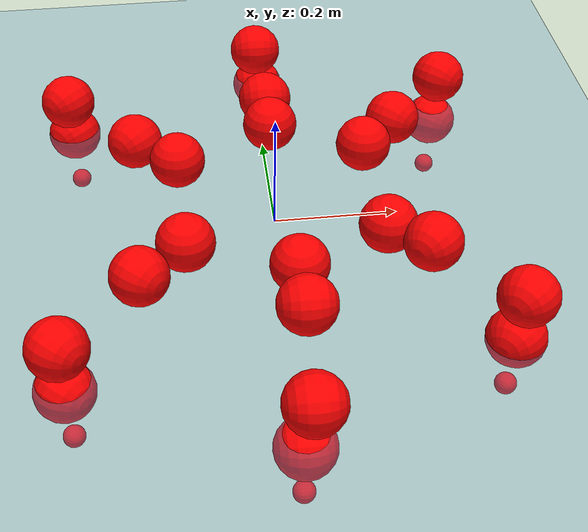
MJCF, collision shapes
<mujoco model="Golem">
  <compiler angle="radian" assetdir="assets" balanceinertia="true" inertiafromgeom="false"/>

  <option timestep="0.005" density="1.2" viscosity="2e-05"/>

  <size nkey="1"/>

  <visual>
    <quality shadowsize="8192"/>
    <map shadowclip="0.5"/>
  </visual>

  <default>
    <default class="/">
      <joint armature="0.01" damping="0.01" frictionloss="0.01"/>
      <geom contype="0" conaffinity="0" group="1" solref="-1000 -80"/>
      <site size="0.01 0.005 0.005" group="5"/>
      <general forcelimited="true" biastype="affine" gainprm="25" biasprm="0 -25 -0.5"/>
      <default class="visual">
        <geom type="mesh" group="2"/>
      </default>
      <default class="collision">
        <geom group="3"/>
      </default>
      <default class="foot">
        <geom size="0.01 0 0" condim="6" group="4" priority="1" solimp="0.015 1 0.01"/>
      </default>
      <default class="reward_collision_sphere">
        <geom group="5" rgba="1 0 0 1"/>
      </default>
    </default>
  </default>

  <asset>
    <texture type="skybox" colorspace="auto" name="//unnamed_texture_0" builtin="gradient" rgb1="0.95 0.95 0.95" rgb2="0.95 0.95 0.95" width="100" height="600"/>
    <texture type="2d" colorspace="auto" name="texplane" builtin="checker" rgb1="0.345 0.575 0.748" rgb2="0.345 0.575 0.748" markrgb="1 1 1" width="512" height="512"/>
    <material name="MatPlane" class="/" texture="texplane" texuniform="true" texrepeat="2 2" specular="0.9"/>
    <mesh name="body" class="/" file="body.stl" scale="0.001 0.001 0.001"/>
    <mesh name="coxa" class="/" file="coxa.stl" scale="0.001 0.001 0.001"/>
    <mesh name="femur" class="/" file="femur.stl" scale="0.001 0.001 0.001"/>
    <mesh name="tibia" class="/" file="tibia.stl" scale="0.001 0.001 0.001"/>
    <mesh name="tarsus" class="/" file="tarsus.stl" scale="0.001 0.001 0.001"/>
  </asset>

  <worldbody>
    <geom name="floor" class="/" size="100 100 0.125" type="plane" group="0" material="MatPlane"/>
    <light name="toplight_shadow" class="/" pos="0 0 5" dir="0.0990148 0.0990148 -0.990148" type="directional" ambient="0.04 0.04 0.04" diffuse="0.55 0.55 0.55" specular="0.12 0.12 0.12"/>
    <light name="toplight_fill" class="/" pos="0 0 5" dir="0.0990148 0.0990148 -0.990148" type="directional" castshadow="false" ambient="0.04 0.04 0.04" diffuse="0.3 0.3 0.3" specular="0.08 0.08 0.08"/>
    <body name="trunk" pos="0.00701974 0.000786818 0.0051207" quat="1 -9.94461e-05 0.00021705 -0.000137">
      <inertial pos="0.000541305 0.00224996 0.0104144" quat="0.998551 -0.0472314 0.0257233 0.00187987" mass="5.73137" diaginertia="0.0102188 0.0764966 0.00757017"/>
      <joint name="//unnamed_joint_0" type="free"/>
      <geom name="//unnamed_geom_1" class="/" pos="0 0 0.0599896" quat="1 0 0 0" type="mesh" rgba="0.9 0.9 0.9 1" mesh="body"/>
      <site name="imu" class="/" pos="0.10598 0.0145239 0.117267" size="0.0114174"/>
      <camera name="track" class="/" pos="0 -2.99733 0" quat="0.707107 0.707107 0 0" mode="trackcom"/>
      <camera name="ego_camera" class="/" pos="0.128598 0 0.0937338" quat="-0.5 -0.5 0.5 0.5"/>
      <body name="coxa_RR" pos="-0.175529 -0.13258 0.0670602" quat="0.383307 -0.00024679 0.000643479 -0.923621">
        <inertial pos="0.00309657 0.0010044 0.00422128" quat="0.999474 0.0166564 -0.0261102 0.00960381" mass="0.329659" diaginertia="0.00917376 0.0816361 0.00797763"/>
        <joint name="coxa_joint_RR" class="/" pos="0 0 0" axis="0.0240476 0.0150729 -0.999597" range="-3.05491 2.92511" armature="0.0141427" damping="0.0114006" frictionloss="0.0146693"/>
        <geom name="//unnamed_geom_2" class="/" type="mesh" rgba="0.2 0.2 0.2 1" mesh="coxa"/>
        <geom name="//unnamed_geom_3" class="reward_collision_sphere" size="0.0456696" pos="-0.0296765 0 0"/>
        <body name="femur_RR" pos="0.058036 -0.0124906 -0.0100849" quat="0.500028 -0.500059 0.499974 0.499939">
          <inertial pos="0.00358982 -0.0105065 -0.0120307" quat="0.999986 0.00231687 0.000156578 0.00480958" mass="0.297479" diaginertia="0.00871017 0.0740921 0.00639842"/>
          <joint name="femur_joint_RR" class="/" pos="0 0 0" axis="-0.00954806 0.00528494 -0.99994" stiffness="0.00934414" range="-3.15456 3.13575" armature="0.00983439" damping="0" frictionloss="0.00444114"/>
          <geom name="//unnamed_geom_4" class="/" type="mesh" rgba="0.9 0.9 0.9 1" mesh="femur"/>
          <geom name="//unnamed_geom_5" class="reward_collision_sphere" size="0.0456696"/>
          <body name="tibia_RR" pos="-0.00438777 -0.172453 0.0119595" quat="-0.000108862 1 2.61595e-05 -0.000491604">
            <inertial pos="-0.00545663 0.0110081 -0.00223088" quat="0.999997 0.00136411 -0.00173252 0.00105064" mass="0.286018" diaginertia="0.00973931 0.0782638 0.00734955"/>
            <joint name="tibia_joint_RR" class="/" pos="0 0 0" axis="0.0107149 -0.00664879 0.99992" range="-3.13572 3.13379" armature="0.0118474" damping="0" frictionloss="0.0150735"/>
            <geom name="//unnamed_geom_6" class="/" type="mesh" rgba="0.2 0.2 0.2 1" mesh="tibia"/>
            <geom name="//unnamed_geom_7" class="reward_collision_sphere" size="0.0456696"/>
            <body name="tarsus_RR" pos="0.0904177 0.00130113 0.000386181" quat="1 -0.00020848 2.43226e-05 -0.00013052">
              <inertial pos="0.0657244 0.0012753 -4.5251e-05" quat="0.49304 0.480362 0.510598 0.515222" mass="0.272268" diaginertia="0.0083596 0.0784348 0.00726921"/>
              <joint name="tarsus_joint_RR" class="/" pos="0 0 0" axis="0.00997386 -0.0070308 0.999926" stiffness="0.000762182" range="-2.90095 2.8901" armature="0.0120164" damping="0" frictionloss="0.0122897"/>
              <geom name="//unnamed_geom_8" class="/" type="mesh" rgba="0.9 0.9 0.9 1" mesh="tarsus"/>
              <geom name="foot_1" class="foot" size="0.00860525" pos="0.110792 0 0" quat="0 -0.707107 0 0.707107"/>
              <geom name="//unnamed_geom_10" class="reward_collision_sphere" size="0.0456696"/>
              <geom name="//unnamed_geom_11" class="reward_collision_sphere" size="0.0171261" pos="0.106341 0 0"/>
              <site name="foot_1" class="foot" pos="0.110792 0 0" quat="0 -0.707107 0 0.707107" size="0.0114174"/>
            </body>
          </body>
        </body>
      </body>
      <body name="coxa_RM" pos="0.0107635 -0.198985 0.0603469" quat="0.708672 -0.000208054 0.000228744 -0.705538">
        <inertial pos="0.00117645 0.00597553 0.00225912" quat="0.998338 -0.0353479 0.0446026 -0.00902859" mass="0.263786" diaginertia="0.00821268 0.0746211 0.00631218"/>
        <joint name="coxa_joint_RM" class="/" pos="0 0 0" axis="0.00350089 -0.010905 -0.999934" range="-3.11662 3.12802" armature="0.012176" damping="0.0062055" frictionloss="0.0113651"/>
        <geom name="//unnamed_geom_12" class="/" type="mesh" rgba="0.2 0.2 0.2 1" mesh="coxa"/>
        <geom name="//unnamed_geom_13" class="reward_collision_sphere" size="0.0456696" pos="-0.0296765 0 0"/>
        <body name="femur_RM" pos="0.0568769 -0.00139508 0.00508184" quat="0.501786 -0.49734 0.503273 0.497574">
          <inertial pos="0.010879 0.00562995 0.012287" quat="0.999999 -0.000514964 0.000907248 -0.00128683" mass="0.261582" diaginertia="0.00940214 0.0753796 0.00678325"/>
          <joint name="femur_joint_RM" class="/" pos="0 0 0" axis="0.0111519 -0.0238525 -0.999653" range="-3.17567 2.92793" armature="0.00966109" damping="0.0122269" frictionloss="0.0170982"/>
          <geom name="//unnamed_geom_14" class="/" type="mesh" rgba="0.9 0.9 0.9 1" mesh="femur"/>
          <geom name="//unnamed_geom_15" class="reward_collision_sphere" size="0.0456696"/>
          <body name="tibia_RM" pos="0.00798499 -0.167771 -0.0119546" quat="-0.000632924 0.999997 -0.00146843 0.0018409">
            <inertial pos="-0.00068811 -0.00213812 -0.0004099" quat="0.999998 -0.000602854 0.0010814 0.00177751" mass="0.287442" diaginertia="0.0082465 0.0669975 0.0069203"/>
            <joint name="tibia_joint_RM" class="/" pos="0 0 0" axis="-0.0350156 0.0403698 0.998571" stiffness="0.0092659" range="-3.20931 3.32815" armature="0.0114436" damping="0.0333629" frictionloss="0.00893378"/>
            <geom name="//unnamed_geom_16" class="/" type="mesh" rgba="0.2 0.2 0.2 1" mesh="tibia"/>
            <geom name="//unnamed_geom_17" class="reward_collision_sphere" size="0.0456696"/>
            <body name="tarsus_RM" pos="0.0947542 -0.000857476 0.0104763" quat="1 -1.62577e-06 -7.25814e-05 3.50389e-06">
              <inertial pos="0.0612256 0.00214124 -0.00704625" quat="0.489269 0.492228 0.483297 0.533621" mass="0.28734" diaginertia="0.00839807 0.0723372 0.00799435"/>
              <joint name="tarsus_joint_RM" class="/" pos="0 0 0" axis="0.000399734 -0.0157144 0.999876" stiffness="0.023135" range="-2.94695 3.3639" armature="0.0111234" damping="0" frictionloss="0.0124273"/>
              <geom name="//unnamed_geom_18" class="/" type="mesh" rgba="0.9 0.9 0.9 1" mesh="tarsus"/>
              <geom name="foot_2" class="foot" size="0.0102594" pos="0.110792 0 0" quat="0 -0.707107 0 0.707107"/>
              <geom name="//unnamed_geom_20" class="reward_collision_sphere" size="0.0456696"/>
              <geom name="//unnamed_geom_21" class="reward_collision_sphere" size="0.0171261" pos="0.106341 0 0"/>
              <site name="foot_2" class="foot" pos="0.110792 0 0" quat="0 -0.707107 0 0.707107" size="0.0114174"/>
            </body>
          </body>
        </body>
      </body>
      <body name="coxa_RF" pos="0.175415 -0.128844 0.0694794" quat="0.922861 0.000496099 0.00104104 -0.385131">
        <inertial pos="-0.00322865 0.013045 -0.00113717" quat="0.999931 0.0104024 0.00418275 0.00337395" mass="0.283291" diaginertia="0.00910056 0.0693151 0.0066204"/>
        <joint name="coxa_joint_RF" class="/" pos="0 0 0" axis="0.0145442 0.00295227 -0.99989" stiffness="0.0105121" range="-3.14255 2.99304" armature="0.0111438" damping="0.046336" frictionloss="0.0105227"/>
        <geom name="//unnamed_geom_22" class="/" type="mesh" rgba="0.2 0.2 0.2 1" mesh="coxa"/>
        <geom name="//unnamed_geom_23" class="reward_collision_sphere" size="0.0456696" pos="-0.0296765 0 0"/>
        <body name="femur_RF" pos="0.0475671 0.00457566 0.00565685" quat="0.499888 -0.49998 0.499467 0.500664">
          <inertial pos="-9.53987e-05 -0.00018001 -0.00845893" quat="0.999945 -0.00164871 0.00607875 0.00841159" mass="0.304614" diaginertia="0.00932554 0.0811169 0.00663369"/>
          <joint name="femur_joint_RF" class="/" pos="0 0 0" axis="0.00413454 0.00546249 -0.999977" range="-3.35196 3.1115" armature="0.0124406" damping="0.01795" frictionloss="0.0158478"/>
          <geom name="//unnamed_geom_24" class="/" type="mesh" rgba="0.9 0.9 0.9 1" mesh="femur"/>
          <geom name="//unnamed_geom_25" class="reward_collision_sphere" size="0.0456696"/>
          <body name="tibia_RF" pos="0.00701491 -0.162265 -0.0045335" quat="0.000381568 1 -0.000233201 -0.000874103">
            <inertial pos="-0.00708361 0.00493328 -0.000136243" quat="0.998333 -0.0421744 -0.0276194 -0.028095" mass="0.274989" diaginertia="0.00977094 0.0817648 0.00709031"/>
            <joint name="tibia_joint_RF" class="/" pos="0 0 0" axis="0.0351288 -0.0204462 0.999174" stiffness="0.00343733" range="-3.14269 3.13481" armature="0.0108855" damping="0" frictionloss="0.0109608"/>
            <geom name="//unnamed_geom_26" class="/" type="mesh" rgba="0.2 0.2 0.2 1" mesh="tibia"/>
            <geom name="//unnamed_geom_27" class="reward_collision_sphere" size="0.0456696"/>
            <body name="tarsus_RF" pos="0.0748908 0.000382021 0.0131109" quat="0.999996 0.00095056 0.000756927 0.00251602">
              <inertial pos="0.0553598 0.00933303 -0.0025437" quat="0.497458 0.501732 0.509651 0.490975" mass="0.346354" diaginertia="0.0098133 0.0854565 0.00690695"/>
              <joint name="tarsus_joint_RF" class="/" pos="0 0 0" axis="-0.0326524 0.0296195 0.999028" stiffness="0.0035799" range="-2.97974 3.13677" armature="0.011195" damping="0" frictionloss="0.0127716"/>
              <geom name="//unnamed_geom_28" class="/" type="mesh" rgba="0.9 0.9 0.9 1" mesh="tarsus"/>
              <geom name="foot_3" class="foot" size="0.0111117" pos="0.110792 0 0" quat="0 -0.707107 0 0.707107"/>
              <geom name="//unnamed_geom_30" class="reward_collision_sphere" size="0.0456696"/>
              <geom name="//unnamed_geom_31" class="reward_collision_sphere" size="0.0171261" pos="0.106341 0 0"/>
              <site name="foot_3" class="foot" pos="0.110792 0 0" quat="0 -0.707107 0 0.707107" size="0.0114174"/>
            </body>
          </body>
        </body>
      </body>
      <body name="coxa_LR" pos="-0.178842 0.123691 0.0527549" quat="0.384219 -0.000497607 -0.00148394 0.923241">
        <inertial pos="0.000951121 0.00130802 -0.00933575" quat="0.999996 0.00105867 -0.00261313 -0.000590955" mass="0.293986" diaginertia="0.00923934 0.0719299 0.00792341"/>
        <joint name="coxa_joint_LR" class="/" pos="0 0 0" axis="0.00038593 0.000363486 -1" stiffness="0.0399635" range="-3.04618 3.08237" armature="0.0136908" damping="0.0340225" frictionloss="0.0176823"/>
        <geom name="//unnamed_geom_32" class="/" type="mesh" rgba="0.2 0.2 0.2 1" mesh="coxa"/>
        <geom name="//unnamed_geom_33" class="reward_collision_sphere" size="0.0456696" pos="-0.0296765 0 0"/>
        <body name="femur_LR" pos="0.0610844 0.00703381 -0.000790196" quat="0.500404 -0.500086 0.500137 0.499372">
          <inertial pos="-0.0100179 0.00408895 -0.00765753" quat="0.999875 0.00345065 0.0153976 -0.000646399" mass="0.33772" diaginertia="0.00916669 0.0750276 0.00706478"/>
          <joint name="femur_joint_LR" class="/" pos="0 0 0" axis="-0.0156016 0.000462083 0.999878" range="-2.89939 3.34989" armature="0.017609" damping="0.0142732" frictionloss="0.0123351"/>
          <geom name="//unnamed_geom_34" class="/" type="mesh" rgba="0.9 0.9 0.9 1" mesh="femur"/>
          <geom name="//unnamed_geom_35" class="reward_collision_sphere" size="0.0456696"/>
          <body name="tibia_LR" pos="-0.00517254 -0.164959 -0.00198826" quat="-0.0018695 0.999997 -0.00140314 0.001093">
            <inertial pos="-0.00534397 0.00801158 -0.00149344" quat="0.999981 0.00212101 0.00465659 0.00342737" mass="0.26151" diaginertia="0.00911426 0.0656928 0.00767131"/>
            <joint name="tibia_joint_LR" class="/" pos="0 0 0" axis="0.0159132 -0.0453718 -0.998843" stiffness="0.0265956" range="-3.13905 3.32248" armature="0.0132641" damping="0" frictionloss="0.0123286"/>
            <geom name="//unnamed_geom_36" class="/" type="mesh" rgba="0.2 0.2 0.2 1" mesh="tibia"/>
            <geom name="//unnamed_geom_37" class="reward_collision_sphere" size="0.0456696"/>
            <body name="tarsus_LR" pos="0.0752853 0.00320804 0.0066919" quat="0.999986 -0.00106996 -0.000380893 0.00521288">
              <inertial pos="0.0684799 0.00863302 0.00234462" quat="0.499709 0.500239 0.499584 0.500467" mass="0.299903" diaginertia="0.00939516 0.0846915 0.00668352"/>
              <joint name="tarsus_joint_LR" class="/" pos="0 0 0" axis="0.000178524 -0.000869858 -1" stiffness="0.0311682" range="-3.16745 3.16538" armature="0.00913887" damping="0.00939249" frictionloss="0.00575596"/>
              <geom name="//unnamed_geom_38" class="/" type="mesh" rgba="0.9 0.9 0.9 1" mesh="tarsus"/>
              <geom name="foot_4" class="foot" size="0.0117291" pos="0.110792 0 0" quat="0.707107 0 -0.707107 0"/>
              <geom name="//unnamed_geom_40" class="reward_collision_sphere" size="0.0456696"/>
              <geom name="//unnamed_geom_41" class="reward_collision_sphere" size="0.0171261" pos="0.106341 0 0"/>
              <site name="foot_4" class="foot" pos="0.110792 0 0" quat="0.707107 0 -0.707107 0" size="0.0114174"/>
            </body>
          </body>
        </body>
      </body>
      <body name="coxa_LM" pos="0.0035069 0.201502 0.0621741" quat="0.707387 0.000260528 -0.00134382 0.706825">
        <inertial pos="-0.00965186 0.000593072 -0.00291764" quat="0.999876 0.00705643 -0.00365392 -0.0135876" mass="0.332793" diaginertia="0.00893913 0.084867 0.00828673"/>
        <joint name="coxa_joint_LM" class="/" pos="0 0 0" axis="0.0132661 0.00356131 -0.999906" range="-3.13648 3.132" armature="0.0120321" damping="0.0327371" frictionloss="0.0149216"/>
        <geom name="//unnamed_geom_42" class="/" type="mesh" rgba="0.2 0.2 0.2 1" mesh="coxa"/>
        <geom name="//unnamed_geom_43" class="reward_collision_sphere" size="0.0456696" pos="-0.0296765 0 0"/>
        <body name="femur_LM" pos="0.0574021 -0.000622319 -0.00848815" quat="0.499987 -0.500149 0.499864 0.500001">
          <inertial pos="-0.00643121 0.000779061 0.00532513" quat="0.99991 -0.00862616 -0.00732358 0.00724501" mass="0.281744" diaginertia="0.00999505 0.0682157 0.0058143"/>
          <joint name="femur_joint_LM" class="/" pos="0 0 0" axis="0.0133983 0.0544104 0.998429" stiffness="0.0137481" range="-3.35564 3.22923" armature="0.0118424" damping="0.0702644" frictionloss="0.0114219"/>
          <geom name="//unnamed_geom_44" class="/" type="mesh" rgba="0.9 0.9 0.9 1" mesh="femur"/>
          <geom name="//unnamed_geom_45" class="reward_collision_sphere" size="0.0456696"/>
          <body name="tibia_LM" pos="0.00575276 -0.164195 0.00104783" quat="-0.00116149 0.999999 0.000206341 0.000527455">
            <inertial pos="0.0108795 -8.81377e-05 0.000119929" quat="0.999908 -0.00715619 0.00883036 0.00744585" mass="0.29784" diaginertia="0.00946052 0.077838 0.00679858"/>
            <joint name="tibia_joint_LM" class="/" pos="0 0 0" axis="0.00143473 0.00192095 -0.999997" range="-3.18363 3.22858" armature="0.0155996" damping="0" frictionloss="0.0187516"/>
            <geom name="//unnamed_geom_46" class="/" type="mesh" rgba="0.2 0.2 0.2 1" mesh="tibia"/>
            <geom name="//unnamed_geom_47" class="reward_collision_sphere" size="0.0456696"/>
            <body name="tarsus_LM" pos="0.0762067 -0.00146365 0.00298638" quat="0.999999 0.000855866 0.000820102 0.000735199">
              <inertial pos="0.0678657 -0.000386672 0.00642933" quat="0.528321 0.482988 0.514885 0.471691" mass="0.293165" diaginertia="0.00992913 0.0755159 0.00754784"/>
              <joint name="tarsus_joint_LM" class="/" pos="0 0 0" axis="-0.00157795 -0.00310104 -0.999994" range="-3.29946 3.1363" armature="0.0097923" damping="0" frictionloss="0.0117507"/>
              <geom name="//unnamed_geom_48" class="/" type="mesh" rgba="0.9 0.9 0.9 1" mesh="tarsus"/>
              <geom name="foot_5" class="foot" size="0.00588178" pos="0.110792 0 0" quat="0.707107 0 -0.707107 0"/>
              <geom name="//unnamed_geom_50" class="reward_collision_sphere" size="0.0456696"/>
              <geom name="//unnamed_geom_51" class="reward_collision_sphere" size="0.0171261" pos="0.106341 0 0"/>
              <site name="foot_5" class="foot" pos="0.110792 0 0" quat="0.707107 0 -0.707107 0" size="0.0114174"/>
            </body>
          </body>
        </body>
      </body>
      <body name="coxa_LF" pos="0.174065 0.123383 0.0605297" quat="0.923298 -0.000614366 0.000714559 0.384083">
        <inertial pos="-0.000197214 0.0119005 0.00264288" quat="0.998775 0.0112268 0.0478597 -0.00562675" mass="0.24444" diaginertia="0.00786108 0.0648763 0.00617882"/>
        <joint name="coxa_joint_LF" class="/" pos="0 0 0" axis="0.00879715 -0.0285741 -0.999553" stiffness="0.0390056" range="-3.29361 3.15059" armature="0.00854109" damping="0" frictionloss="0.0165174"/>
        <geom name="//unnamed_geom_52" class="/" type="mesh" rgba="0.2 0.2 0.2 1" mesh="coxa"/>
        <geom name="//unnamed_geom_53" class="reward_collision_sphere" size="0.0456696" pos="-0.0296765 0 0"/>
        <body name="femur_LF" pos="0.0687047 0.00701067 -0.00649763" quat="0.499402 -0.500203 0.500258 0.500137">
          <inertial pos="0.00258504 -0.00666741 0.00967384" quat="0.999967 0.00093877 -0.00323607 0.00736883" mass="0.278374" diaginertia="0.00843573 0.0690334 0.00737486"/>
          <joint name="femur_joint_LF" class="/" pos="0 0 0" axis="0.00225039 0.0095572 0.999952" stiffness="0.0614748" range="-3.11435 3.13949" armature="0.00755199" damping="0.0125848" frictionloss="0.0123092"/>
          <geom name="//unnamed_geom_54" class="/" type="mesh" rgba="0.9 0.9 0.9 1" mesh="femur"/>
          <geom name="//unnamed_geom_55" class="reward_collision_sphere" size="0.0456696"/>
          <body name="tibia_LF" pos="-0.000286268 -0.155532 0.00277869" quat="0.000433846 1 -6.59526e-05 0.000423274">
            <inertial pos="-0.0107265 -0.0107936 -0.0123877" quat="0.999895 -0.00916519 0.0108192 0.00302105" mass="0.3028" diaginertia="0.00976501 0.0707668 0.00624557"/>
            <joint name="tibia_joint_LF" class="/" pos="0 0 0" axis="0.0198877 0.000540305 -0.999802" range="-3.28113 3.35398" armature="0.0120624" damping="0.014702" frictionloss="0.0151441"/>
            <geom name="//unnamed_geom_56" class="/" type="mesh" rgba="0.2 0.2 0.2 1" mesh="tibia"/>
            <geom name="//unnamed_geom_57" class="reward_collision_sphere" size="0.0456696"/>
            <body name="tarsus_LF" pos="0.0932704 -0.00659826 -0.00284866" quat="1 0.000491712 0.000497769 0.000254438">
              <inertial pos="0.0663276 0.00221784 -0.010714" quat="0.516502 0.485178 0.525323 0.471024" mass="0.298203" diaginertia="0.00844743 0.0782319 0.00623599"/>
              <joint name="tarsus_joint_LF" class="/" pos="0 0 0" axis="-0.00102836 0.00164898 -0.999998" range="-2.95671 3.36147" armature="0.00797259" damping="0.00170911" frictionloss="0.00820299"/>
              <geom name="//unnamed_geom_58" class="/" type="mesh" rgba="0.9 0.9 0.9 1" mesh="tarsus"/>
              <geom name="foot_6" class="foot" size="0.00854312" pos="0.110792 0 0" quat="0.707107 0 -0.707107 0"/>
              <geom name="//unnamed_geom_60" class="reward_collision_sphere" size="0.0456696"/>
              <geom name="//unnamed_geom_61" class="reward_collision_sphere" size="0.0171261" pos="0.106341 0 0"/>
              <site name="foot_6" class="foot" pos="0.110792 0 0" quat="0.707107 0 -0.707107 0" size="0.0114174"/>
            </body>
          </body>
        </body>
      </body>
    </body>
  </worldbody>

  <contact>
    <pair class="/" geom1="floor" geom2="foot_1" name="//unnamed_contact_0"/>
    <pair class="/" geom1="floor" geom2="foot_2" name="//unnamed_contact_1"/>
    <pair class="/" geom1="floor" geom2="foot_3" name="//unnamed_contact_2"/>
    <pair class="/" geom1="floor" geom2="foot_4" name="//unnamed_contact_3"/>
    <pair class="/" geom1="floor" geom2="foot_5" name="//unnamed_contact_4"/>
    <pair class="/" geom1="floor" geom2="foot_6" name="//unnamed_contact_5"/>
  </contact>

  <actuator>
    <general name="coxa_joint_RR" class="/" joint="coxa_joint_RR" forcerange="-8.77405 8.77405" gainprm="19.8105" biasprm="0 -19.8105 -0.568216"/>
    <general name="femur_joint_RR" class="/" joint="femur_joint_RR" forcerange="-8.84179 8.84179" gainprm="19.8105" biasprm="0 -19.8105 -0.568216"/>
    <general name="tibia_joint_RR" class="/" joint="tibia_joint_RR" forcerange="-8.24958 8.24958" gainprm="19.8105" biasprm="0 -19.8105 -0.568216"/>
    <general name="tarsus_joint_RR" class="/" joint="tarsus_joint_RR" forcerange="-8.55951 8.55951" gainprm="19.8105" biasprm="0 -19.8105 -0.568216"/>
    <general name="coxa_joint_RM" class="/" joint="coxa_joint_RM" forcerange="-8.07903 8.07903" gainprm="19.8105" biasprm="0 -19.8105 -0.568216"/>
    <general name="femur_joint_RM" class="/" joint="femur_joint_RM" forcerange="-8.8417 8.8417" gainprm="19.8105" biasprm="0 -19.8105 -0.568216"/>
    <general name="tibia_joint_RM" class="/" joint="tibia_joint_RM" forcerange="-8.16515 8.16515" gainprm="19.8105" biasprm="0 -19.8105 -0.568216"/>
    <general name="tarsus_joint_RM" class="/" joint="tarsus_joint_RM" forcerange="-10.8233 10.8233" gainprm="19.8105" biasprm="0 -19.8105 -0.568216"/>
    <general name="coxa_joint_RF" class="/" joint="coxa_joint_RF" forcerange="-8.05718 8.05718" gainprm="19.8105" biasprm="0 -19.8105 -0.568216"/>
    <general name="femur_joint_RF" class="/" joint="femur_joint_RF" forcerange="-8.49205 8.49205" gainprm="19.8105" biasprm="0 -19.8105 -0.568216"/>
    <general name="tibia_joint_RF" class="/" joint="tibia_joint_RF" forcerange="-8.35389 8.35389" gainprm="19.8105" biasprm="0 -19.8105 -0.568216"/>
    <general name="tarsus_joint_RF" class="/" joint="tarsus_joint_RF" forcerange="-8.87729 8.87729" gainprm="19.8105" biasprm="0 -19.8105 -0.568216"/>
    <general name="coxa_joint_LR" class="/" joint="coxa_joint_LR" forcerange="-9.29096 9.29096" gainprm="19.8105" biasprm="0 -19.8105 -0.568216"/>
    <general name="femur_joint_LR" class="/" joint="femur_joint_LR" forcerange="-11.2413 11.2413" gainprm="19.8105" biasprm="0 -19.8105 -0.568216"/>
    <general name="tibia_joint_LR" class="/" joint="tibia_joint_LR" forcerange="-8.21439 8.21439" gainprm="19.8105" biasprm="0 -19.8105 -0.568216"/>
    <general name="tarsus_joint_LR" class="/" joint="tarsus_joint_LR" forcerange="-8.2299 8.2299" gainprm="19.8105" biasprm="0 -19.8105 -0.568216"/>
    <general name="coxa_joint_LM" class="/" joint="coxa_joint_LM" forcerange="-7.83544 7.83544" gainprm="19.8105" biasprm="0 -19.8105 -0.568216"/>
    <general name="femur_joint_LM" class="/" joint="femur_joint_LM" forcerange="-9.8086 9.8086" gainprm="19.8105" biasprm="0 -19.8105 -0.568216"/>
    <general name="tibia_joint_LM" class="/" joint="tibia_joint_LM" forcerange="-8.40978 8.40978" gainprm="19.8105" biasprm="0 -19.8105 -0.568216"/>
    <general name="tarsus_joint_LM" class="/" joint="tarsus_joint_LM" forcerange="-6.50563 6.50563" gainprm="19.8105" biasprm="0 -19.8105 -0.568216"/>
    <general name="coxa_joint_LF" class="/" joint="coxa_joint_LF" forcerange="-9.12884 9.12884" gainprm="19.8105" biasprm="0 -19.8105 -0.568216"/>
    <general name="femur_joint_LF" class="/" joint="femur_joint_LF" forcerange="-5.96175 5.96175" gainprm="19.8105" biasprm="0 -19.8105 -0.568216"/>
    <general name="tibia_joint_LF" class="/" joint="tibia_joint_LF" forcerange="-8.36564 8.36564" gainprm="19.8105" biasprm="0 -19.8105 -0.568216"/>
    <general name="tarsus_joint_LF" class="/" joint="tarsus_joint_LF" forcerange="-12.3063 12.3063" gainprm="19.8105" biasprm="0 -19.8105 -0.568216"/>
  </actuator>

  <sensor>
    <gyro site="imu" name="imu_angular_velocity"/>
    <velocimeter site="imu" name="imu_linear_velocity"/>
    <framelinvel objtype="site" objname="foot_1" name="foot_1_global_linear_velocity"/>
    <framelinvel objtype="site" objname="foot_2" name="foot_2_global_linear_velocity"/>
    <framelinvel objtype="site" objname="foot_3" name="foot_3_global_linear_velocity"/>
    <framelinvel objtype="site" objname="foot_4" name="foot_4_global_linear_velocity"/>
    <framelinvel objtype="site" objname="foot_5" name="foot_5_global_linear_velocity"/>
    <framelinvel objtype="site" objname="foot_6" name="foot_6_global_linear_velocity"/>
  </sensor>

  <keyframe>
    <key name="home" qpos="0 0 0.1457 1 0 0 0 0 0 0 0 0 0 0 0 0 0 0 0 0 0 0 0 0 0 0 0 0 0 0 0"/>
  </keyframe>
</mujoco>
